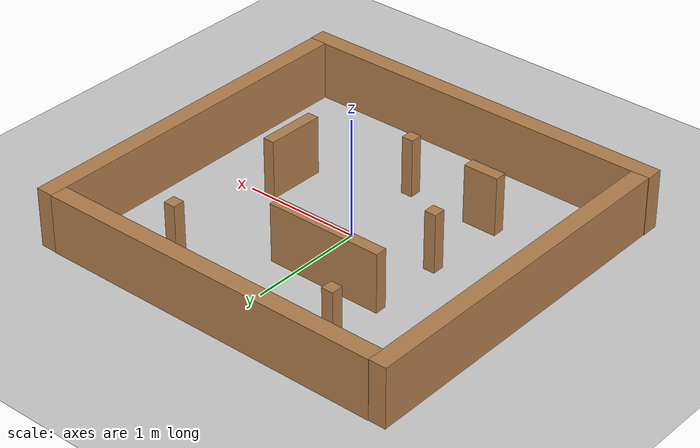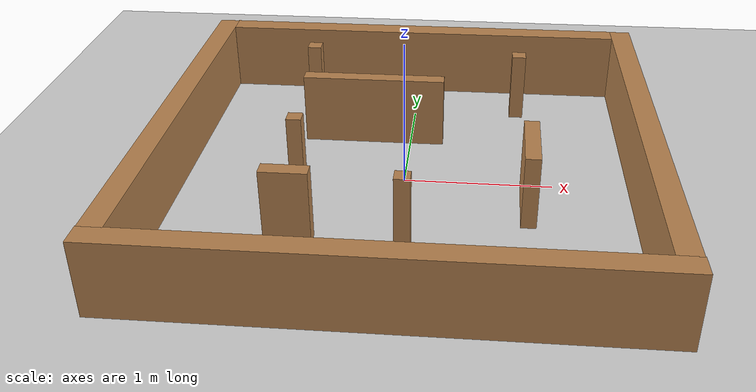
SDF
<sdf version="1.7">
 <world name="default">
  <light name="sun" type="directional">
   <pose>0 0 10 0 -0 0</pose>
   <diffuse>0.8 0.8 0.8 1</diffuse>
   <specular>0.2 0.2 0.2 1</specular>
   <attenuation>
    <range>1000</range>
    <constant>0.9</constant>
    <linear>0.01</linear>
    <quadratic>0.001</quadratic>
   </attenuation>
   <direction>-0.5 0.1 -0.9</direction>
   <spot><inner_angle>0</inner_angle><outer_angle>0</outer_angle><falloff>0</falloff></spot>
  </light>
  <model name="ground_plane">
   <static>1</static>
   <link name="link">
    <collision name="collision">
     <geometry><plane><normal>0 0 1</normal><size>100 100</size></plane></geometry>
     <surface>
      <contact><collide_bitmask>65535</collide_bitmask></contact>
      <friction><ode><mu>100</mu><mu2>50</mu2></ode></friction>
     </surface>
    </collision>
    <visual name="visual">
     <cast_shadows>0</cast_shadows>
     <geometry><plane><normal>0 0 1</normal><size>100 100</size></plane></geometry>
     <material>
      <script><uri>file://media/materials/scripts/gazebo.material</uri><name>Gazebo/Grey</name></script>
     </material>
    </visual>
   </link>
  </model>
  <gravity>0 0 -9.8</gravity>
  <magnetic_field>6e-06 2.3e-05 -4.2e-05</magnetic_field>
  <atmosphere type="adiabatic"/>
  <physics type="ode">
   <max_step_size>0.001</max_step_size>
   <real_time_factor>1</real_time_factor>
   <real_time_update_rate>1000</real_time_update_rate>
  </physics>
  <scene><ambient>0.4 0.4 0.4 1</ambient><background>0.7 0.7 0.7 1</background><shadows>1</shadows></scene>
  <spherical_coordinates>
   <surface_model>EARTH_WGS84</surface_model>
   <latitude_deg>0</latitude_deg>
   <longitude_deg>0</longitude_deg>
   <elevation>0</elevation>
   <heading_deg>0</heading_deg>
  </spherical_coordinates>
  <model name="wall_3"><pose>-2.72348 2.26241 0 0 -0 0</pose></model>
  <model name="wall">
   <pose>0.006661 -1.49503 0 0 -0 0</pose>
   <link name="Wall_0">
    <collision name="Wall_0_Collision">
     <geometry><box><size>3 0.15 0.5</size></box></geometry>
     <pose>0 0 0.25 0 -0 0</pose>
    </collision>
    <visual name="Wall_0_Visual">
     <pose>0 0 0.25 0 -0 0</pose>
     <geometry><box><size>3 0.15 0.5</size></box></geometry>
     <material>
      <script><uri>file://media/materials/scripts/gazebo.material</uri><name>Gazebo/Wood</name></script>
      <ambient>0.00470588 1 1 1</ambient>
     </material>
    </visual>
    <pose>0 3 0 0 -0 0</pose>
   </link>
   <link name="Wall_1">
    <collision name="Wall_1_Collision">
     <geometry><box><size>3 0.15 0.5</size></box></geometry>
     <pose>0 0 0.25 0 -0 0</pose>
    </collision>
    <visual name="Wall_1_Visual">
     <pose>0 0 0.25 0 -0 0</pose>
     <geometry><box><size>3 0.15 0.5</size></box></geometry>
     <material>
      <script><uri>file://media/materials/scripts/gazebo.material</uri><name>Gazebo/Wood</name></script>
      <ambient>0.00470588 1 1 1</ambient>
     </material>
    </visual>
    <pose>-1.5708 1.5708 0 0 0 -1.5708</pose>
   </link>
   <link name="Wall_2">
    <collision name="Wall_2_Collision">
     <geometry><box><size>3 0.15 0.5</size></box></geometry>
     <pose>0 0 0.25 0 -0 0</pose>
    </collision>
    <visual name="Wall_2_Visual">
     <pose>0 0 0.25 0 -0 0</pose>
     <geometry><box><size>3 0.15 0.5</size></box></geometry>
     <material>
      <script><uri>file://media/materials/scripts/gazebo.material</uri><name>Gazebo/Wood</name></script>
      <ambient>0.00470588 1 1 1</ambient>
     </material>
    </visual>
    <pose>1.5708 1.5708 0 0 -0 1.5708</pose>
   </link>
   <link name="Wall_3">
    <collision name="Wall_3_Collision">
     <geometry><box><size>3 0.15 0.5</size></box></geometry>
     <pose>0 0 0.25 0 -0 0</pose>
    </collision>
    <visual name="Wall_3_Visual">
     <pose>0 0 0.25 0 -0 0</pose>
     <geometry><box><size>3.3 0.15 0.5</size></box></geometry>
     <material>
      <script><uri>file://media/materials/scripts/gazebo.material</uri><name>Gazebo/Wood</name></script>
      <ambient>0.00470588 1 1 1</ambient>
     </material>
    </visual>
   </link>
   <static>1</static>
  </model>
  <model name="obstacle">
   <pose>-0.266837 0.57965 0 0 -0 0</pose>
   <link name="obstacle_0">
    <collision name="obstacle_0_Collision">
     <geometry><box><size>1 0.1 0.5</size></box></geometry>
     <pose>0 0 0.25 0 -0 0</pose>
    </collision>
    <visual name="obstacle_0_Visual">
     <pose>0 0 0.25 0 -0 0</pose>
     <geometry><box><size>1 0.1 0.5</size></box></geometry>
     <material>
      <script><uri>file://media/materials/scripts/gazebo.material</uri><name>Gazebo/Wood</name></script>
      <ambient>0.00588235 0.00470588 1 1</ambient>
     </material>
    </visual>
   </link>
   <static>1</static>
  </model>
  <model name="obstacle1">
   <pose>0.827373 -0.256848 0 0 0 -1.5871</pose>
   <link name="obstacle_2">
    <collision name="obstacle_1_Collision">
     <geometry><box><size>0.5 0.1 0.5</size></box></geometry>
     <pose>0 0 0.25 0 -0 0</pose>
    </collision>
    <visual name="obstacle_1_Visual">
     <pose>0 0 0.25 0 -0 0</pose>
     <geometry><box><size>0.5 0.1 0.5</size></box></geometry>
     <material>
      <script><uri>file://media/materials/scripts/gazebo.material</uri><name>Gazebo/Wood</name></script>
      <ambient>0.00588235 0.00705882 0.00470588 1</ambient>
     </material>
    </visual>
   </link>
   <static>1</static>
  </model>
  <model name="obstacle1_3">
   <pose>-0.783452 1.12136 0 0 -0 0</pose>
   <link name="obstacle_2">
    <collision name="obstacle_1_Collision">
     <geometry><box><size>0.1 0.1 0.5</size></box></geometry>
     <pose>0 0 0.25 0 -0 0</pose>
    </collision>
    <visual name="obstacle_1_Visual">
     <pose>0 0 0.25 0 -0 0</pose>
     <geometry><box><size>0.1 0.1 0.5</size></box></geometry>
     <material>
      <script><uri>file://media/materials/scripts/gazebo.material</uri><name>Gazebo/Wood</name></script>
      <ambient>0.00588235 0.00705882 0.00470588 1</ambient>
     </material>
    </visual>
   </link>
   <static>1</static>
  </model>
  <model name="obstacle1_0">
   <pose>-0.654081 -0.74011 0 0 -0 0</pose>
   <link name="obstacle_2">
    <collision name="obstacle_1_Collision">
     <geometry><box><size>0.3 0.1 0.5</size></box></geometry>
     <pose>0 0 0.25 0 -0 0</pose>
    </collision>
    <visual name="obstacle_1_Visual">
     <pose>0 0 0.25 0 -0 0</pose>
     <geometry><box><size>0.3 0.1 0.5</size></box></geometry>
     <material>
      <script><uri>file://media/materials/scripts/gazebo.material</uri><name>Gazebo/Wood</name></script>
      <ambient>1 0.00470588 0.4 1</ambient>
     </material>
    </visual>
   </link>
   <static>1</static>
  </model>
  <model name="obstacle1_1">
   <pose>0.774263 1.05878 0 0 -0 0</pose>
   <link name="obstacle_2">
    <collision name="obstacle_1_Collision">
     <geometry><box><size>0.1 0.1 0.5</size></box></geometry>
     <pose>0 0 0.25 0 -0 0</pose>
    </collision>
    <visual name="obstacle_1_Visual">
     <pose>0 0 0.25 0 -0 0</pose>
     <geometry><box><size>0.1 0.1 0.5</size></box></geometry>
     <material>
      <script><uri>file://media/materials/scripts/gazebo.material</uri><name>Gazebo/Wood</name></script>
      <ambient>0.00431373 1 0.0054902 1</ambient>
     </material>
    </visual>
   </link>
   <static>1</static>
  </model>
  <model name="obstacle1_2">
   <pose>0.051363 -0.753064 0 0 -0 0</pose>
   <link name="obstacle_2">
    <collision name="obstacle_1_Collision">
     <geometry><box><size>0.1 0.1 0.5</size></box></geometry>
     <pose>0 0 0.25 0 -0 0</pose>
    </collision>
    <visual name="obstacle_1_Visual">
     <pose>0 0 0.25 0 -0 0</pose>
     <geometry><box><size>0.1 0.1 0.5</size></box></geometry>
     <material>
      <script><uri>file://media/materials/scripts/gazebo.material</uri><name>Gazebo/Wood</name></script>
      <ambient>0.00431373 1 0.0054902 1</ambient>
     </material>
    </visual>
   </link>
   <static>1</static>
  </model>
  <model name="obstacle1_4">
   <pose>-0.718233 -0.068406 0 0 -0 0</pose>
   <link name="obstacle_2">
    <collision name="obstacle_1_Collision">
     <geometry><box><size>0.1 0.1 0.5</size></box></geometry>
     <pose>0 0 0.25 0 -0 0</pose>
    </collision>
    <visual name="obstacle_1_Visual">
     <pose>0 0 0.25 0 -0 0</pose>
     <geometry><box><size>0.1 0.1 0.5</size></box></geometry>
     <material>
      <script><uri>file://media/materials/scripts/gazebo.material</uri><name>Gazebo/Wood</name></script>
      <ambient>0.00431373 1 0.0054902 1</ambient>
     </material>
    </visual>
   </link>
   <static>1</static>
  </model>
 </world>
</sdf>
